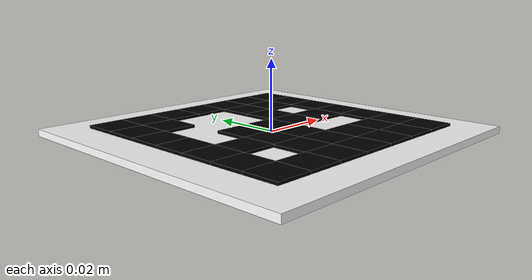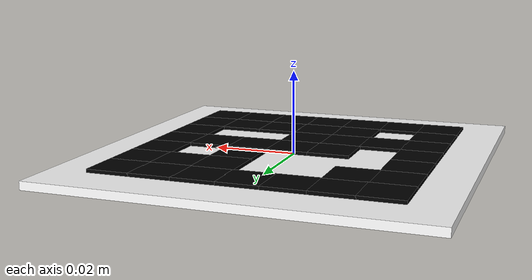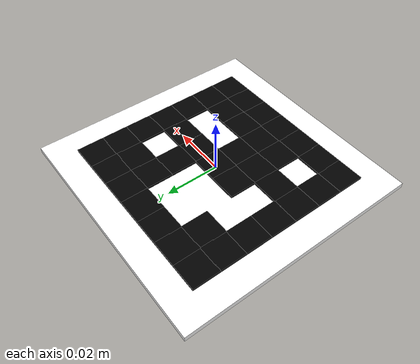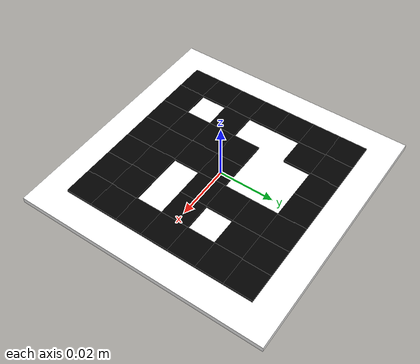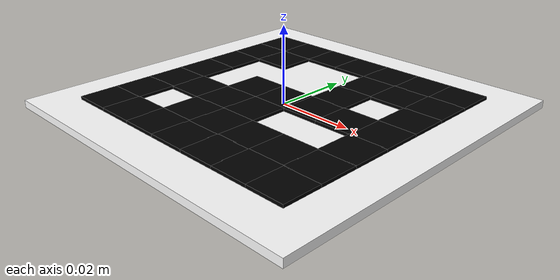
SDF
<?xml version="1.0"?>
<sdf version="1.7">
  <model name="aruco_5x5_250_id1_motion">
    <!-- Dynamic so the shared board can receive Gazebo cmd_vel in position-servo demos.
         With gravity disabled it remains stationary in calibration worlds until commanded. -->
    <static>false</static>
    <self_collide>false</self_collide>
    <allow_auto_disable>false</allow_auto_disable>
    <!-- Visual-servo variant: rotate the board geometry onto the tabletop;
         keep the world spawn pose unrotated for horizontal cmd_vel motion. -->
    <link name="board">
      <pose>0 0 0 1.5708 0 0</pose>
      <gravity>false</gravity>
      <velocity_decay>
        <linear>0.08</linear>
        <angular>0.12</angular>
      </velocity_decay>
      <inertial>
        <mass>0.05</mass>
        <inertia>
          <ixx>0.0001</ixx><iyy>0.0001</iyy><izz>0.0001</izz>
        </inertia>
      </inertial>
      <!-- DICT_5X5_250 marker id=1, borderBits=1. Rendered as geometry so Gazebo does not depend on texture/material loading. -->
      <!-- Back-side cells are mirrored in X so cameras viewing the rear face still see the canonical marker, not a mirror image. -->
      <collision name="collision">
        <geometry>
          <box>
            <size>0.09 0.002 0.09</size>
          </box>
        </geometry>
        <surface>
          <friction>
            <ode>
              <mu>0.08</mu>
              <mu2>0.08</mu2>
            </ode>
          </friction>
        </surface>
      </collision>

      <visual name="white_backing">
        <geometry>
          <box>
            <size>0.09 0.002 0.09</size>
          </box>
        </geometry>
        <material>
          <ambient>1 1 1 1</ambient>
          <diffuse>1 1 1 1</diffuse>
          <specular>0.1 0.1 0.1 1</specular>
        </material>
      </visual>

      <visual name="front_black_r0_c0">
        <pose>-0.0300 -0.0016 0.0300 0 0 0</pose>
        <geometry>
          <box>
            <size>0.0102 0.0008 0.0102</size>
          </box>
        </geometry>
        <material>
          <ambient>0 0 0 1</ambient>
          <diffuse>0 0 0 1</diffuse>
          <specular>0 0 0 1</specular>
        </material>
      </visual>
      <visual name="back_black_r0_c0_mirrored">
        <pose>0.0300 0.0016 0.0300 0 0 0</pose>
        <geometry>
          <box>
            <size>0.0102 0.0008 0.0102</size>
          </box>
        </geometry>
        <material>
          <ambient>0 0 0 1</ambient>
          <diffuse>0 0 0 1</diffuse>
          <specular>0 0 0 1</specular>
        </material>
      </visual>
      <visual name="front_black_r0_c1">
        <pose>-0.0200 -0.0016 0.0300 0 0 0</pose>
        <geometry>
          <box>
            <size>0.0102 0.0008 0.0102</size>
          </box>
        </geometry>
        <material>
          <ambient>0 0 0 1</ambient>
          <diffuse>0 0 0 1</diffuse>
          <specular>0 0 0 1</specular>
        </material>
      </visual>
      <visual name="back_black_r0_c1_mirrored">
        <pose>0.0200 0.0016 0.0300 0 0 0</pose>
        <geometry>
          <box>
            <size>0.0102 0.0008 0.0102</size>
          </box>
        </geometry>
        <material>
          <ambient>0 0 0 1</ambient>
          <diffuse>0 0 0 1</diffuse>
          <specular>0 0 0 1</specular>
        </material>
      </visual>
      <visual name="front_black_r0_c2">
        <pose>-0.0100 -0.0016 0.0300 0 0 0</pose>
        <geometry>
          <box>
            <size>0.0102 0.0008 0.0102</size>
          </box>
        </geometry>
        <material>
          <ambient>0 0 0 1</ambient>
          <diffuse>0 0 0 1</diffuse>
          <specular>0 0 0 1</specular>
        </material>
      </visual>
      <visual name="back_black_r0_c2_mirrored">
        <pose>0.0100 0.0016 0.0300 0 0 0</pose>
        <geometry>
          <box>
            <size>0.0102 0.0008 0.0102</size>
          </box>
        </geometry>
        <material>
          <ambient>0 0 0 1</ambient>
          <diffuse>0 0 0 1</diffuse>
          <specular>0 0 0 1</specular>
        </material>
      </visual>
      <visual name="front_black_r0_c3">
        <pose>0.0000 -0.0016 0.0300 0 0 0</pose>
        <geometry>
          <box>
            <size>0.0102 0.0008 0.0102</size>
          </box>
        </geometry>
        <material>
          <ambient>0 0 0 1</ambient>
          <diffuse>0 0 0 1</diffuse>
          <specular>0 0 0 1</specular>
        </material>
      </visual>
      <visual name="back_black_r0_c3_mirrored">
        <pose>0.0000 0.0016 0.0300 0 0 0</pose>
        <geometry>
          <box>
            <size>0.0102 0.0008 0.0102</size>
          </box>
        </geometry>
        <material>
          <ambient>0 0 0 1</ambient>
          <diffuse>0 0 0 1</diffuse>
          <specular>0 0 0 1</specular>
        </material>
      </visual>
      <visual name="front_black_r0_c4">
        <pose>0.0100 -0.0016 0.0300 0 0 0</pose>
        <geometry>
          <box>
            <size>0.0102 0.0008 0.0102</size>
          </box>
        </geometry>
        <material>
          <ambient>0 0 0 1</ambient>
          <diffuse>0 0 0 1</diffuse>
          <specular>0 0 0 1</specular>
        </material>
      </visual>
      <visual name="back_black_r0_c4_mirrored">
        <pose>-0.0100 0.0016 0.0300 0 0 0</pose>
        <geometry>
          <box>
            <size>0.0102 0.0008 0.0102</size>
          </box>
        </geometry>
        <material>
          <ambient>0 0 0 1</ambient>
          <diffuse>0 0 0 1</diffuse>
          <specular>0 0 0 1</specular>
        </material>
      </visual>
      <visual name="front_black_r0_c5">
        <pose>0.0200 -0.0016 0.0300 0 0 0</pose>
        <geometry>
          <box>
            <size>0.0102 0.0008 0.0102</size>
          </box>
        </geometry>
        <material>
          <ambient>0 0 0 1</ambient>
          <diffuse>0 0 0 1</diffuse>
          <specular>0 0 0 1</specular>
        </material>
      </visual>
      <visual name="back_black_r0_c5_mirrored">
        <pose>-0.0200 0.0016 0.0300 0 0 0</pose>
        <geometry>
          <box>
            <size>0.0102 0.0008 0.0102</size>
          </box>
        </geometry>
        <material>
          <ambient>0 0 0 1</ambient>
          <diffuse>0 0 0 1</diffuse>
          <specular>0 0 0 1</specular>
        </material>
      </visual>
      <visual name="front_black_r0_c6">
        <pose>0.0300 -0.0016 0.0300 0 0 0</pose>
        <geometry>
          <box>
            <size>0.0102 0.0008 0.0102</size>
          </box>
        </geometry>
        <material>
          <ambient>0 0 0 1</ambient>
          <diffuse>0 0 0 1</diffuse>
          <specular>0 0 0 1</specular>
        </material>
      </visual>
      <visual name="back_black_r0_c6_mirrored">
        <pose>-0.0300 0.0016 0.0300 0 0 0</pose>
        <geometry>
          <box>
            <size>0.0102 0.0008 0.0102</size>
          </box>
        </geometry>
        <material>
          <ambient>0 0 0 1</ambient>
          <diffuse>0 0 0 1</diffuse>
          <specular>0 0 0 1</specular>
        </material>
      </visual>
      <visual name="front_black_r1_c0">
        <pose>-0.0300 -0.0016 0.0200 0 0 0</pose>
        <geometry>
          <box>
            <size>0.0102 0.0008 0.0102</size>
          </box>
        </geometry>
        <material>
          <ambient>0 0 0 1</ambient>
          <diffuse>0 0 0 1</diffuse>
          <specular>0 0 0 1</specular>
        </material>
      </visual>
      <visual name="back_black_r1_c0_mirrored">
        <pose>0.0300 0.0016 0.0200 0 0 0</pose>
        <geometry>
          <box>
            <size>0.0102 0.0008 0.0102</size>
          </box>
        </geometry>
        <material>
          <ambient>0 0 0 1</ambient>
          <diffuse>0 0 0 1</diffuse>
          <specular>0 0 0 1</specular>
        </material>
      </visual>
      <visual name="front_black_r1_c1">
        <pose>-0.0200 -0.0016 0.0200 0 0 0</pose>
        <geometry>
          <box>
            <size>0.0102 0.0008 0.0102</size>
          </box>
        </geometry>
        <material>
          <ambient>0 0 0 1</ambient>
          <diffuse>0 0 0 1</diffuse>
          <specular>0 0 0 1</specular>
        </material>
      </visual>
      <visual name="back_black_r1_c1_mirrored">
        <pose>0.0200 0.0016 0.0200 0 0 0</pose>
        <geometry>
          <box>
            <size>0.0102 0.0008 0.0102</size>
          </box>
        </geometry>
        <material>
          <ambient>0 0 0 1</ambient>
          <diffuse>0 0 0 1</diffuse>
          <specular>0 0 0 1</specular>
        </material>
      </visual>
      <visual name="front_black_r1_c2">
        <pose>-0.0100 -0.0016 0.0200 0 0 0</pose>
        <geometry>
          <box>
            <size>0.0102 0.0008 0.0102</size>
          </box>
        </geometry>
        <material>
          <ambient>0 0 0 1</ambient>
          <diffuse>0 0 0 1</diffuse>
          <specular>0 0 0 1</specular>
        </material>
      </visual>
      <visual name="back_black_r1_c2_mirrored">
        <pose>0.0100 0.0016 0.0200 0 0 0</pose>
        <geometry>
          <box>
            <size>0.0102 0.0008 0.0102</size>
          </box>
        </geometry>
        <material>
          <ambient>0 0 0 1</ambient>
          <diffuse>0 0 0 1</diffuse>
          <specular>0 0 0 1</specular>
        </material>
      </visual>
      <visual name="front_black_r1_c3">
        <pose>0.0000 -0.0016 0.0200 0 0 0</pose>
        <geometry>
          <box>
            <size>0.0102 0.0008 0.0102</size>
          </box>
        </geometry>
        <material>
          <ambient>0 0 0 1</ambient>
          <diffuse>0 0 0 1</diffuse>
          <specular>0 0 0 1</specular>
        </material>
      </visual>
      <visual name="back_black_r1_c3_mirrored">
        <pose>0.0000 0.0016 0.0200 0 0 0</pose>
        <geometry>
          <box>
            <size>0.0102 0.0008 0.0102</size>
          </box>
        </geometry>
        <material>
          <ambient>0 0 0 1</ambient>
          <diffuse>0 0 0 1</diffuse>
          <specular>0 0 0 1</specular>
        </material>
      </visual>
      <visual name="front_black_r1_c4">
        <pose>0.0100 -0.0016 0.0200 0 0 0</pose>
        <geometry>
          <box>
            <size>0.0102 0.0008 0.0102</size>
          </box>
        </geometry>
        <material>
          <ambient>0 0 0 1</ambient>
          <diffuse>0 0 0 1</diffuse>
          <specular>0 0 0 1</specular>
        </material>
      </visual>
      <visual name="back_black_r1_c4_mirrored">
        <pose>-0.0100 0.0016 0.0200 0 0 0</pose>
        <geometry>
          <box>
            <size>0.0102 0.0008 0.0102</size>
          </box>
        </geometry>
        <material>
          <ambient>0 0 0 1</ambient>
          <diffuse>0 0 0 1</diffuse>
          <specular>0 0 0 1</specular>
        </material>
      </visual>
      <visual name="front_black_r1_c6">
        <pose>0.0300 -0.0016 0.0200 0 0 0</pose>
        <geometry>
          <box>
            <size>0.0102 0.0008 0.0102</size>
          </box>
        </geometry>
        <material>
          <ambient>0 0 0 1</ambient>
          <diffuse>0 0 0 1</diffuse>
          <specular>0 0 0 1</specular>
        </material>
      </visual>
      <visual name="back_black_r1_c6_mirrored">
        <pose>-0.0300 0.0016 0.0200 0 0 0</pose>
        <geometry>
          <box>
            <size>0.0102 0.0008 0.0102</size>
          </box>
        </geometry>
        <material>
          <ambient>0 0 0 1</ambient>
          <diffuse>0 0 0 1</diffuse>
          <specular>0 0 0 1</specular>
        </material>
      </visual>
      <visual name="front_black_r2_c0">
        <pose>-0.0300 -0.0016 0.0100 0 0 0</pose>
        <geometry>
          <box>
            <size>0.0102 0.0008 0.0102</size>
          </box>
        </geometry>
        <material>
          <ambient>0 0 0 1</ambient>
          <diffuse>0 0 0 1</diffuse>
          <specular>0 0 0 1</specular>
        </material>
      </visual>
      <visual name="back_black_r2_c0_mirrored">
        <pose>0.0300 0.0016 0.0100 0 0 0</pose>
        <geometry>
          <box>
            <size>0.0102 0.0008 0.0102</size>
          </box>
        </geometry>
        <material>
          <ambient>0 0 0 1</ambient>
          <diffuse>0 0 0 1</diffuse>
          <specular>0 0 0 1</specular>
        </material>
      </visual>
      <visual name="front_black_r2_c3">
        <pose>0.0000 -0.0016 0.0100 0 0 0</pose>
        <geometry>
          <box>
            <size>0.0102 0.0008 0.0102</size>
          </box>
        </geometry>
        <material>
          <ambient>0 0 0 1</ambient>
          <diffuse>0 0 0 1</diffuse>
          <specular>0 0 0 1</specular>
        </material>
      </visual>
      <visual name="back_black_r2_c3_mirrored">
        <pose>0.0000 0.0016 0.0100 0 0 0</pose>
        <geometry>
          <box>
            <size>0.0102 0.0008 0.0102</size>
          </box>
        </geometry>
        <material>
          <ambient>0 0 0 1</ambient>
          <diffuse>0 0 0 1</diffuse>
          <specular>0 0 0 1</specular>
        </material>
      </visual>
      <visual name="front_black_r2_c4">
        <pose>0.0100 -0.0016 0.0100 0 0 0</pose>
        <geometry>
          <box>
            <size>0.0102 0.0008 0.0102</size>
          </box>
        </geometry>
        <material>
          <ambient>0 0 0 1</ambient>
          <diffuse>0 0 0 1</diffuse>
          <specular>0 0 0 1</specular>
        </material>
      </visual>
      <visual name="back_black_r2_c4_mirrored">
        <pose>-0.0100 0.0016 0.0100 0 0 0</pose>
        <geometry>
          <box>
            <size>0.0102 0.0008 0.0102</size>
          </box>
        </geometry>
        <material>
          <ambient>0 0 0 1</ambient>
          <diffuse>0 0 0 1</diffuse>
          <specular>0 0 0 1</specular>
        </material>
      </visual>
      <visual name="front_black_r2_c5">
        <pose>0.0200 -0.0016 0.0100 0 0 0</pose>
        <geometry>
          <box>
            <size>0.0102 0.0008 0.0102</size>
          </box>
        </geometry>
        <material>
          <ambient>0 0 0 1</ambient>
          <diffuse>0 0 0 1</diffuse>
          <specular>0 0 0 1</specular>
        </material>
      </visual>
      <visual name="back_black_r2_c5_mirrored">
        <pose>-0.0200 0.0016 0.0100 0 0 0</pose>
        <geometry>
          <box>
            <size>0.0102 0.0008 0.0102</size>
          </box>
        </geometry>
        <material>
          <ambient>0 0 0 1</ambient>
          <diffuse>0 0 0 1</diffuse>
          <specular>0 0 0 1</specular>
        </material>
      </visual>
      <visual name="front_black_r2_c6">
        <pose>0.0300 -0.0016 0.0100 0 0 0</pose>
        <geometry>
          <box>
            <size>0.0102 0.0008 0.0102</size>
          </box>
        </geometry>
        <material>
          <ambient>0 0 0 1</ambient>
          <diffuse>0 0 0 1</diffuse>
          <specular>0 0 0 1</specular>
        </material>
      </visual>
      <visual name="back_black_r2_c6_mirrored">
        <pose>-0.0300 0.0016 0.0100 0 0 0</pose>
        <geometry>
          <box>
            <size>0.0102 0.0008 0.0102</size>
          </box>
        </geometry>
        <material>
          <ambient>0 0 0 1</ambient>
          <diffuse>0 0 0 1</diffuse>
          <specular>0 0 0 1</specular>
        </material>
      </visual>
      <visual name="front_black_r3_c0">
        <pose>-0.0300 -0.0016 0.0000 0 0 0</pose>
        <geometry>
          <box>
            <size>0.0102 0.0008 0.0102</size>
          </box>
        </geometry>
        <material>
          <ambient>0 0 0 1</ambient>
          <diffuse>0 0 0 1</diffuse>
          <specular>0 0 0 1</specular>
        </material>
      </visual>
      <visual name="back_black_r3_c0_mirrored">
        <pose>0.0300 0.0016 0.0000 0 0 0</pose>
        <geometry>
          <box>
            <size>0.0102 0.0008 0.0102</size>
          </box>
        </geometry>
        <material>
          <ambient>0 0 0 1</ambient>
          <diffuse>0 0 0 1</diffuse>
          <specular>0 0 0 1</specular>
        </material>
      </visual>
      <visual name="front_black_r3_c1">
        <pose>-0.0200 -0.0016 0.0000 0 0 0</pose>
        <geometry>
          <box>
            <size>0.0102 0.0008 0.0102</size>
          </box>
        </geometry>
        <material>
          <ambient>0 0 0 1</ambient>
          <diffuse>0 0 0 1</diffuse>
          <specular>0 0 0 1</specular>
        </material>
      </visual>
      <visual name="back_black_r3_c1_mirrored">
        <pose>0.0200 0.0016 0.0000 0 0 0</pose>
        <geometry>
          <box>
            <size>0.0102 0.0008 0.0102</size>
          </box>
        </geometry>
        <material>
          <ambient>0 0 0 1</ambient>
          <diffuse>0 0 0 1</diffuse>
          <specular>0 0 0 1</specular>
        </material>
      </visual>
      <visual name="front_black_r3_c2">
        <pose>-0.0100 -0.0016 0.0000 0 0 0</pose>
        <geometry>
          <box>
            <size>0.0102 0.0008 0.0102</size>
          </box>
        </geometry>
        <material>
          <ambient>0 0 0 1</ambient>
          <diffuse>0 0 0 1</diffuse>
          <specular>0 0 0 1</specular>
        </material>
      </visual>
      <visual name="back_black_r3_c2_mirrored">
        <pose>0.0100 0.0016 0.0000 0 0 0</pose>
        <geometry>
          <box>
            <size>0.0102 0.0008 0.0102</size>
          </box>
        </geometry>
        <material>
          <ambient>0 0 0 1</ambient>
          <diffuse>0 0 0 1</diffuse>
          <specular>0 0 0 1</specular>
        </material>
      </visual>
      <visual name="front_black_r3_c3">
        <pose>0.0000 -0.0016 0.0000 0 0 0</pose>
        <geometry>
          <box>
            <size>0.0102 0.0008 0.0102</size>
          </box>
        </geometry>
        <material>
          <ambient>0 0 0 1</ambient>
          <diffuse>0 0 0 1</diffuse>
          <specular>0 0 0 1</specular>
        </material>
      </visual>
      <visual name="back_black_r3_c3_mirrored">
        <pose>0.0000 0.0016 0.0000 0 0 0</pose>
        <geometry>
          <box>
            <size>0.0102 0.0008 0.0102</size>
          </box>
        </geometry>
        <material>
          <ambient>0 0 0 1</ambient>
          <diffuse>0 0 0 1</diffuse>
          <specular>0 0 0 1</specular>
        </material>
      </visual>
      <visual name="front_black_r3_c4">
        <pose>0.0100 -0.0016 0.0000 0 0 0</pose>
        <geometry>
          <box>
            <size>0.0102 0.0008 0.0102</size>
          </box>
        </geometry>
        <material>
          <ambient>0 0 0 1</ambient>
          <diffuse>0 0 0 1</diffuse>
          <specular>0 0 0 1</specular>
        </material>
      </visual>
      <visual name="back_black_r3_c4_mirrored">
        <pose>-0.0100 0.0016 0.0000 0 0 0</pose>
        <geometry>
          <box>
            <size>0.0102 0.0008 0.0102</size>
          </box>
        </geometry>
        <material>
          <ambient>0 0 0 1</ambient>
          <diffuse>0 0 0 1</diffuse>
          <specular>0 0 0 1</specular>
        </material>
      </visual>
      <visual name="front_black_r3_c6">
        <pose>0.0300 -0.0016 0.0000 0 0 0</pose>
        <geometry>
          <box>
            <size>0.0102 0.0008 0.0102</size>
          </box>
        </geometry>
        <material>
          <ambient>0 0 0 1</ambient>
          <diffuse>0 0 0 1</diffuse>
          <specular>0 0 0 1</specular>
        </material>
      </visual>
      <visual name="back_black_r3_c6_mirrored">
        <pose>-0.0300 0.0016 0.0000 0 0 0</pose>
        <geometry>
          <box>
            <size>0.0102 0.0008 0.0102</size>
          </box>
        </geometry>
        <material>
          <ambient>0 0 0 1</ambient>
          <diffuse>0 0 0 1</diffuse>
          <specular>0 0 0 1</specular>
        </material>
      </visual>
      <visual name="front_black_r4_c0">
        <pose>-0.0300 -0.0016 -0.0100 0 0 0</pose>
        <geometry>
          <box>
            <size>0.0102 0.0008 0.0102</size>
          </box>
        </geometry>
        <material>
          <ambient>0 0 0 1</ambient>
          <diffuse>0 0 0 1</diffuse>
          <specular>0 0 0 1</specular>
        </material>
      </visual>
      <visual name="back_black_r4_c0_mirrored">
        <pose>0.0300 0.0016 -0.0100 0 0 0</pose>
        <geometry>
          <box>
            <size>0.0102 0.0008 0.0102</size>
          </box>
        </geometry>
        <material>
          <ambient>0 0 0 1</ambient>
          <diffuse>0 0 0 1</diffuse>
          <specular>0 0 0 1</specular>
        </material>
      </visual>
      <visual name="front_black_r4_c2">
        <pose>-0.0100 -0.0016 -0.0100 0 0 0</pose>
        <geometry>
          <box>
            <size>0.0102 0.0008 0.0102</size>
          </box>
        </geometry>
        <material>
          <ambient>0 0 0 1</ambient>
          <diffuse>0 0 0 1</diffuse>
          <specular>0 0 0 1</specular>
        </material>
      </visual>
      <visual name="back_black_r4_c2_mirrored">
        <pose>0.0100 0.0016 -0.0100 0 0 0</pose>
        <geometry>
          <box>
            <size>0.0102 0.0008 0.0102</size>
          </box>
        </geometry>
        <material>
          <ambient>0 0 0 1</ambient>
          <diffuse>0 0 0 1</diffuse>
          <specular>0 0 0 1</specular>
        </material>
      </visual>
      <visual name="front_black_r4_c6">
        <pose>0.0300 -0.0016 -0.0100 0 0 0</pose>
        <geometry>
          <box>
            <size>0.0102 0.0008 0.0102</size>
          </box>
        </geometry>
        <material>
          <ambient>0 0 0 1</ambient>
          <diffuse>0 0 0 1</diffuse>
          <specular>0 0 0 1</specular>
        </material>
      </visual>
      <visual name="back_black_r4_c6_mirrored">
        <pose>-0.0300 0.0016 -0.0100 0 0 0</pose>
        <geometry>
          <box>
            <size>0.0102 0.0008 0.0102</size>
          </box>
        </geometry>
        <material>
          <ambient>0 0 0 1</ambient>
          <diffuse>0 0 0 1</diffuse>
          <specular>0 0 0 1</specular>
        </material>
      </visual>
      <visual name="front_black_r5_c0">
        <pose>-0.0300 -0.0016 -0.0200 0 0 0</pose>
        <geometry>
          <box>
            <size>0.0102 0.0008 0.0102</size>
          </box>
        </geometry>
        <material>
          <ambient>0 0 0 1</ambient>
          <diffuse>0 0 0 1</diffuse>
          <specular>0 0 0 1</specular>
        </material>
      </visual>
      <visual name="back_black_r5_c0_mirrored">
        <pose>0.0300 0.0016 -0.0200 0 0 0</pose>
        <geometry>
          <box>
            <size>0.0102 0.0008 0.0102</size>
          </box>
        </geometry>
        <material>
          <ambient>0 0 0 1</ambient>
          <diffuse>0 0 0 1</diffuse>
          <specular>0 0 0 1</specular>
        </material>
      </visual>
      <visual name="front_black_r5_c1">
        <pose>-0.0200 -0.0016 -0.0200 0 0 0</pose>
        <geometry>
          <box>
            <size>0.0102 0.0008 0.0102</size>
          </box>
        </geometry>
        <material>
          <ambient>0 0 0 1</ambient>
          <diffuse>0 0 0 1</diffuse>
          <specular>0 0 0 1</specular>
        </material>
      </visual>
      <visual name="back_black_r5_c1_mirrored">
        <pose>0.0200 0.0016 -0.0200 0 0 0</pose>
        <geometry>
          <box>
            <size>0.0102 0.0008 0.0102</size>
          </box>
        </geometry>
        <material>
          <ambient>0 0 0 1</ambient>
          <diffuse>0 0 0 1</diffuse>
          <specular>0 0 0 1</specular>
        </material>
      </visual>
      <visual name="front_black_r5_c2">
        <pose>-0.0100 -0.0016 -0.0200 0 0 0</pose>
        <geometry>
          <box>
            <size>0.0102 0.0008 0.0102</size>
          </box>
        </geometry>
        <material>
          <ambient>0 0 0 1</ambient>
          <diffuse>0 0 0 1</diffuse>
          <specular>0 0 0 1</specular>
        </material>
      </visual>
      <visual name="back_black_r5_c2_mirrored">
        <pose>0.0100 0.0016 -0.0200 0 0 0</pose>
        <geometry>
          <box>
            <size>0.0102 0.0008 0.0102</size>
          </box>
        </geometry>
        <material>
          <ambient>0 0 0 1</ambient>
          <diffuse>0 0 0 1</diffuse>
          <specular>0 0 0 1</specular>
        </material>
      </visual>
      <visual name="front_black_r5_c5">
        <pose>0.0200 -0.0016 -0.0200 0 0 0</pose>
        <geometry>
          <box>
            <size>0.0102 0.0008 0.0102</size>
          </box>
        </geometry>
        <material>
          <ambient>0 0 0 1</ambient>
          <diffuse>0 0 0 1</diffuse>
          <specular>0 0 0 1</specular>
        </material>
      </visual>
      <visual name="back_black_r5_c5_mirrored">
        <pose>-0.0200 0.0016 -0.0200 0 0 0</pose>
        <geometry>
          <box>
            <size>0.0102 0.0008 0.0102</size>
          </box>
        </geometry>
        <material>
          <ambient>0 0 0 1</ambient>
          <diffuse>0 0 0 1</diffuse>
          <specular>0 0 0 1</specular>
        </material>
      </visual>
      <visual name="front_black_r5_c6">
        <pose>0.0300 -0.0016 -0.0200 0 0 0</pose>
        <geometry>
          <box>
            <size>0.0102 0.0008 0.0102</size>
          </box>
        </geometry>
        <material>
          <ambient>0 0 0 1</ambient>
          <diffuse>0 0 0 1</diffuse>
          <specular>0 0 0 1</specular>
        </material>
      </visual>
      <visual name="back_black_r5_c6_mirrored">
        <pose>-0.0300 0.0016 -0.0200 0 0 0</pose>
        <geometry>
          <box>
            <size>0.0102 0.0008 0.0102</size>
          </box>
        </geometry>
        <material>
          <ambient>0 0 0 1</ambient>
          <diffuse>0 0 0 1</diffuse>
          <specular>0 0 0 1</specular>
        </material>
      </visual>
      <visual name="front_black_r6_c0">
        <pose>-0.0300 -0.0016 -0.0300 0 0 0</pose>
        <geometry>
          <box>
            <size>0.0102 0.0008 0.0102</size>
          </box>
        </geometry>
        <material>
          <ambient>0 0 0 1</ambient>
          <diffuse>0 0 0 1</diffuse>
          <specular>0 0 0 1</specular>
        </material>
      </visual>
      <visual name="back_black_r6_c0_mirrored">
        <pose>0.0300 0.0016 -0.0300 0 0 0</pose>
        <geometry>
          <box>
            <size>0.0102 0.0008 0.0102</size>
          </box>
        </geometry>
        <material>
          <ambient>0 0 0 1</ambient>
          <diffuse>0 0 0 1</diffuse>
          <specular>0 0 0 1</specular>
        </material>
      </visual>
      <visual name="front_black_r6_c1">
        <pose>-0.0200 -0.0016 -0.0300 0 0 0</pose>
        <geometry>
          <box>
            <size>0.0102 0.0008 0.0102</size>
          </box>
        </geometry>
        <material>
          <ambient>0 0 0 1</ambient>
          <diffuse>0 0 0 1</diffuse>
          <specular>0 0 0 1</specular>
        </material>
      </visual>
      <visual name="back_black_r6_c1_mirrored">
        <pose>0.0200 0.0016 -0.0300 0 0 0</pose>
        <geometry>
          <box>
            <size>0.0102 0.0008 0.0102</size>
          </box>
        </geometry>
        <material>
          <ambient>0 0 0 1</ambient>
          <diffuse>0 0 0 1</diffuse>
          <specular>0 0 0 1</specular>
        </material>
      </visual>
      <visual name="front_black_r6_c2">
        <pose>-0.0100 -0.0016 -0.0300 0 0 0</pose>
        <geometry>
          <box>
            <size>0.0102 0.0008 0.0102</size>
          </box>
        </geometry>
        <material>
          <ambient>0 0 0 1</ambient>
          <diffuse>0 0 0 1</diffuse>
          <specular>0 0 0 1</specular>
        </material>
      </visual>
      <visual name="back_black_r6_c2_mirrored">
        <pose>0.0100 0.0016 -0.0300 0 0 0</pose>
        <geometry>
          <box>
            <size>0.0102 0.0008 0.0102</size>
          </box>
        </geometry>
        <material>
          <ambient>0 0 0 1</ambient>
          <diffuse>0 0 0 1</diffuse>
          <specular>0 0 0 1</specular>
        </material>
      </visual>
      <visual name="front_black_r6_c3">
        <pose>0.0000 -0.0016 -0.0300 0 0 0</pose>
        <geometry>
          <box>
            <size>0.0102 0.0008 0.0102</size>
          </box>
        </geometry>
        <material>
          <ambient>0 0 0 1</ambient>
          <diffuse>0 0 0 1</diffuse>
          <specular>0 0 0 1</specular>
        </material>
      </visual>
      <visual name="back_black_r6_c3_mirrored">
        <pose>0.0000 0.0016 -0.0300 0 0 0</pose>
        <geometry>
          <box>
            <size>0.0102 0.0008 0.0102</size>
          </box>
        </geometry>
        <material>
          <ambient>0 0 0 1</ambient>
          <diffuse>0 0 0 1</diffuse>
          <specular>0 0 0 1</specular>
        </material>
      </visual>
      <visual name="front_black_r6_c4">
        <pose>0.0100 -0.0016 -0.0300 0 0 0</pose>
        <geometry>
          <box>
            <size>0.0102 0.0008 0.0102</size>
          </box>
        </geometry>
        <material>
          <ambient>0 0 0 1</ambient>
          <diffuse>0 0 0 1</diffuse>
          <specular>0 0 0 1</specular>
        </material>
      </visual>
      <visual name="back_black_r6_c4_mirrored">
        <pose>-0.0100 0.0016 -0.0300 0 0 0</pose>
        <geometry>
          <box>
            <size>0.0102 0.0008 0.0102</size>
          </box>
        </geometry>
        <material>
          <ambient>0 0 0 1</ambient>
          <diffuse>0 0 0 1</diffuse>
          <specular>0 0 0 1</specular>
        </material>
      </visual>
      <visual name="front_black_r6_c5">
        <pose>0.0200 -0.0016 -0.0300 0 0 0</pose>
        <geometry>
          <box>
            <size>0.0102 0.0008 0.0102</size>
          </box>
        </geometry>
        <material>
          <ambient>0 0 0 1</ambient>
          <diffuse>0 0 0 1</diffuse>
          <specular>0 0 0 1</specular>
        </material>
      </visual>
      <visual name="back_black_r6_c5_mirrored">
        <pose>-0.0200 0.0016 -0.0300 0 0 0</pose>
        <geometry>
          <box>
            <size>0.0102 0.0008 0.0102</size>
          </box>
        </geometry>
        <material>
          <ambient>0 0 0 1</ambient>
          <diffuse>0 0 0 1</diffuse>
          <specular>0 0 0 1</specular>
        </material>
      </visual>
      <visual name="front_black_r6_c6">
        <pose>0.0300 -0.0016 -0.0300 0 0 0</pose>
        <geometry>
          <box>
            <size>0.0102 0.0008 0.0102</size>
          </box>
        </geometry>
        <material>
          <ambient>0 0 0 1</ambient>
          <diffuse>0 0 0 1</diffuse>
          <specular>0 0 0 1</specular>
        </material>
      </visual>
      <visual name="back_black_r6_c6_mirrored">
        <pose>-0.0300 0.0016 -0.0300 0 0 0</pose>
        <geometry>
          <box>
            <size>0.0102 0.0008 0.0102</size>
          </box>
        </geometry>
        <material>
          <ambient>0 0 0 1</ambient>
          <diffuse>0 0 0 1</diffuse>
          <specular>0 0 0 1</specular>
        </material>
      </visual>
    </link>

    <!-- Same free-body velocity controller used by the moving cube target. -->
    <plugin
      filename="ignition-gazebo-velocity-control-system"
      name="ignition::gazebo::systems::VelocityControl">
      <topic>/model/aruco_marker_model/cmd_vel</topic>
      <initial_linear>0.0 0.0 0.0</initial_linear>
      <initial_angular>0.0 0.0 0.0</initial_angular>
    </plugin>
  </model>
</sdf>
